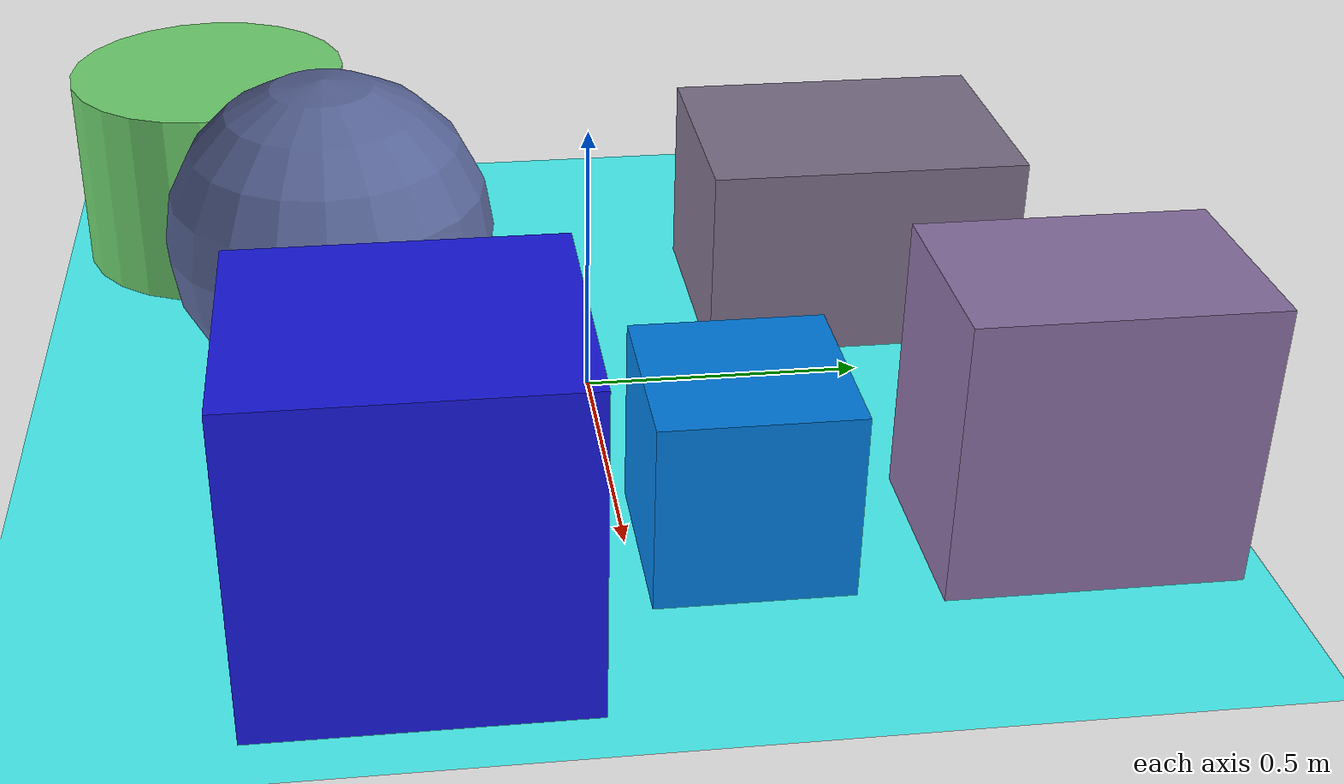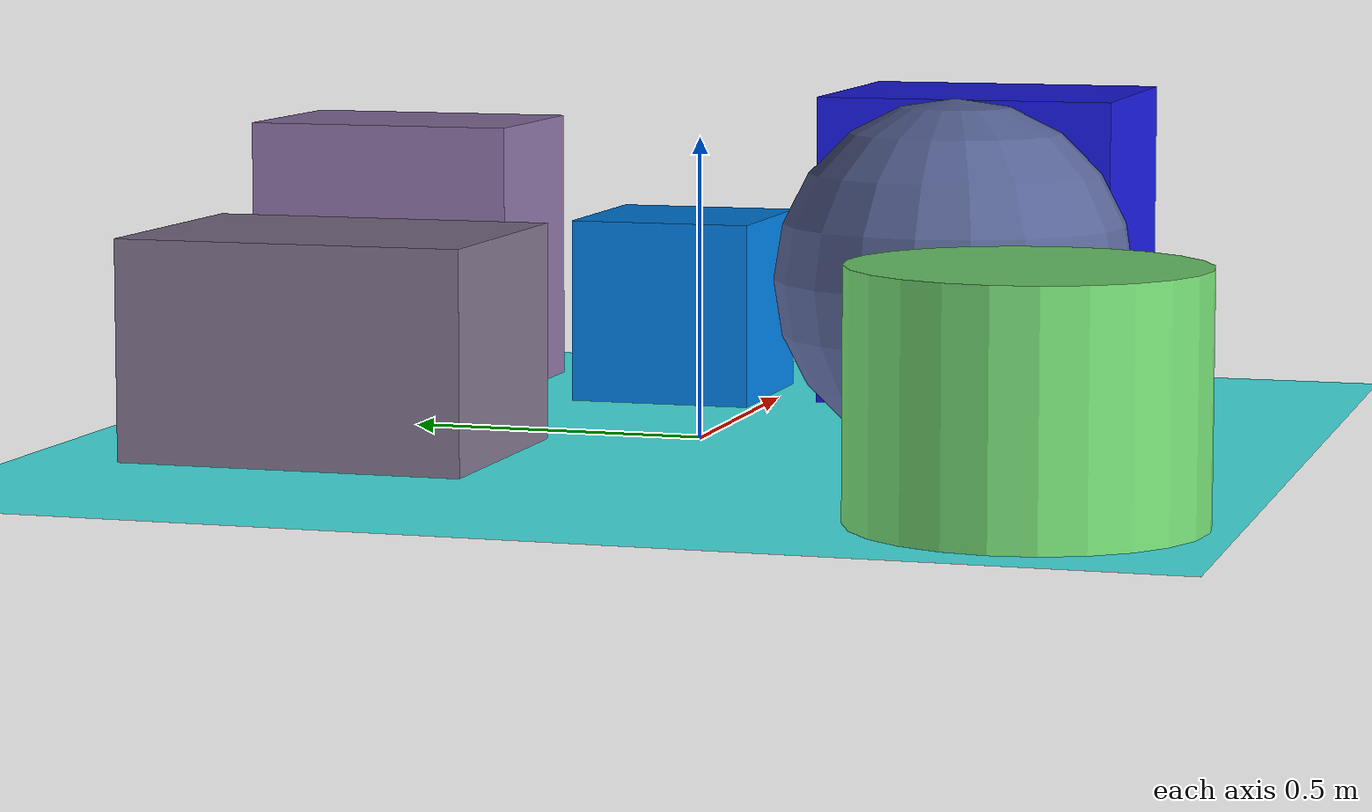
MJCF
<mujoco>
   <asset>
<texture type="skybox" builtin="gradient" rgb1="0.9 0.2 0.8" rgb2="0.8 1.0 0.9" width="256" height="256"/>
<texture name="flat_0" builtin="flat" rgb1="0.0 0.5 0.9" rgb2="0.0 0.5 0.9"  width="200" height="200"/>
<texture name="checker_1" builtin="checker" type="2d" rgb1="0.5 0.7 0.8" rgb2="0.2 0.1 0.4" width="200" height="200"/>
<texture name="checker_2" builtin="checker" type="2d" rgb1="0.5 0.8 0.8" rgb2="0.5 0.1 0.3" width="200" height="200"/>
<texture name="flat_3" builtin="flat" rgb1="0.1 0.1 0.9" rgb2="0.1 0.1 0.9"  width="200" height="200"/>
<texture name="gradient_4" builtin="gradient" rgb1="0.6 0.4 0.9" rgb2="0.5 0.5 0.4" width="200" height="200"/>
<texture name="gradient_5" builtin="gradient" rgb1="0.9 0.7 0.2" rgb2="0.0 1.0 0.7" width="200" height="200"/><material name="flat_0_mat" reflectance="0" texture="flat_0" texuniform="true"/>
<material name="checker_1_mat" reflectance="0" texrepeat="2 2" texture="checker_1" texuniform="false" />
<material name="checker_2_mat" reflectance="0" texrepeat="5 5" texture="checker_2" texuniform="false" />
<material name="flat_3_mat" reflectance="0" texture="flat_3" texuniform="true"/>
<material name="gradient_4_mat" reflectance="0" texture="gradient_4" texuniform="true"/>
<material name="gradient_5_mat" reflectance="0" texture="gradient_5" texuniform="true"/>
   </asset>

   <worldbody>
      <light diffuse=".9 .9 .9" pos="0 0 3" dir="0 0 -1"/>
     <geom type="plane" size="1 1 0.1" rgba="0.3 1.0 1.0 1"/>
<geom type="box" pos="0.52 0.18 0.16" size="0.16 0.16 0.16" material="flat_0_mat" />
<geom type="sphere" pos="-0.09 -0.45 0.29" size="0.29 0.29 0.29" material="checker_1_mat" />
<geom type="box" pos="-0.3 0.53 0.18" size="0.22 0.29 0.18" material="checker_2_mat" />
<geom type="box" pos="0.69 -0.34 0.27" size="0.23 0.26 0.27" material="flat_3_mat" />
<geom type="box" pos="0.54 0.71 0.24" size="0.17 0.24 0.24" material="gradient_4_mat" />
<geom type="cylinder" pos="-0.67 -0.69 0.19" size="0.27 0.19 0.19" material="gradient_5_mat" /><camera euler="60 0 180" fovy="60" name="camera_a" pos="0 -1.5 1"></camera>   </worldbody>
</mujoco>
